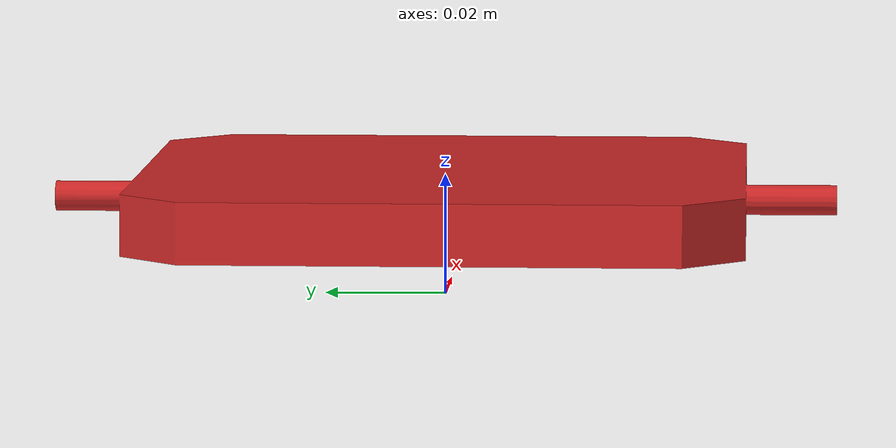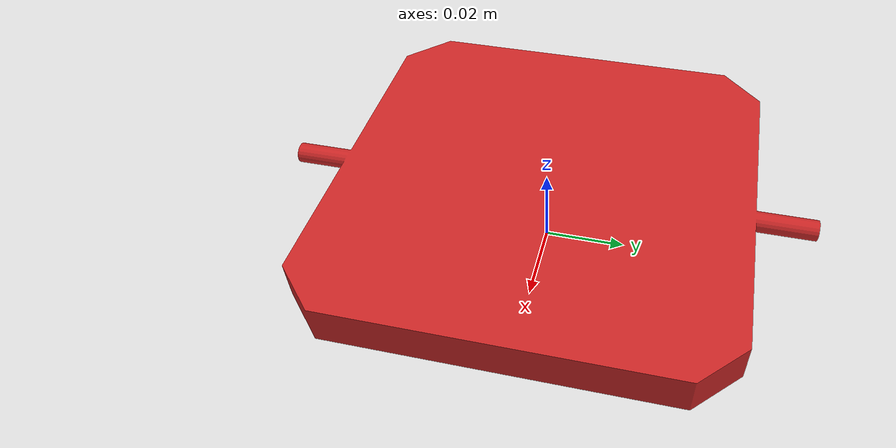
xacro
<?xml version="1.0"?>
<robot name="robot_ros" xmlns:xacro="http://www.ros.org/wiki/xacro">
    <link name="robot_foot_step"/>
    <joint name="robot_foot" type="fixed">
        <parent link="robot_foot_step"/>
        <child link="base"/>
        <origin rpy="0 0 0" xyz="0 0 0.021"/>
    </joint>
    <link name="base">
        <inertial>
            <mass value="0.5"/>
            <origin xyz="0 0 0" rpy=" 0 0 0"/>
            <inertia
                ixx="0" ixy="0" ixz="0"
                iyy="0" iyz="0"
                izz="0"
            />
        </inertial>

        <collision name='collision'>
            <geometry>
                <mesh filename="package://robot_ros_description/urdffile/frame.STL"/>
            </geometry>
        </collision>

        <visual name='chassis_visual'>
            <origin xyz="0 0 0" rpy=" 0 0 0"/>
            <geometry>
                <mesh filename="package://robot_ros_description/urdffile/frame.STL"/>
            </geometry>
             <material name="red"/>
        </visual>

  </link>
</robot>
